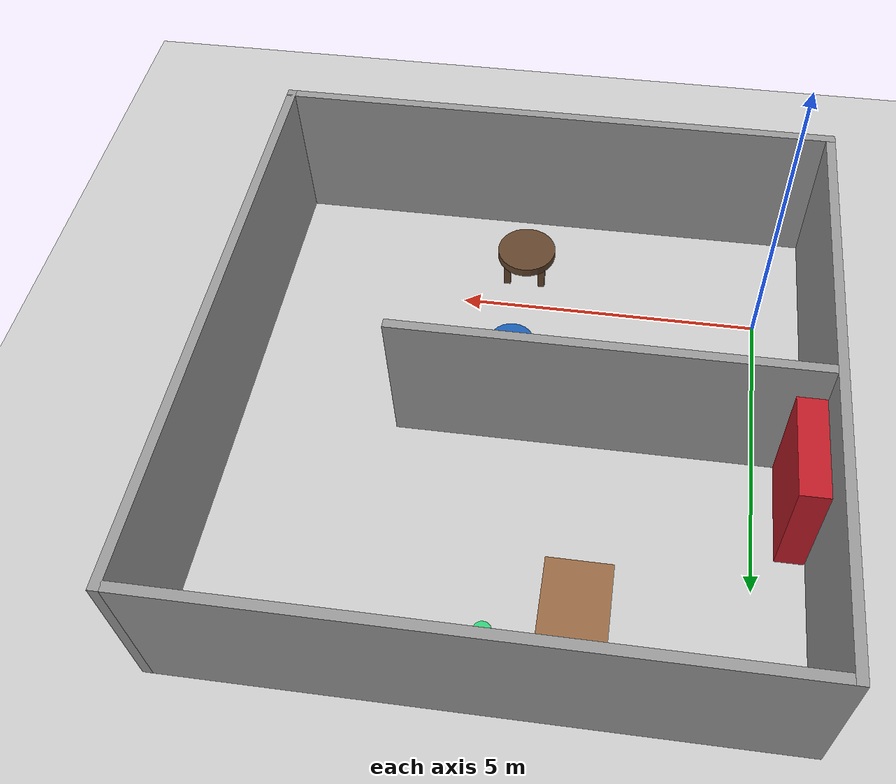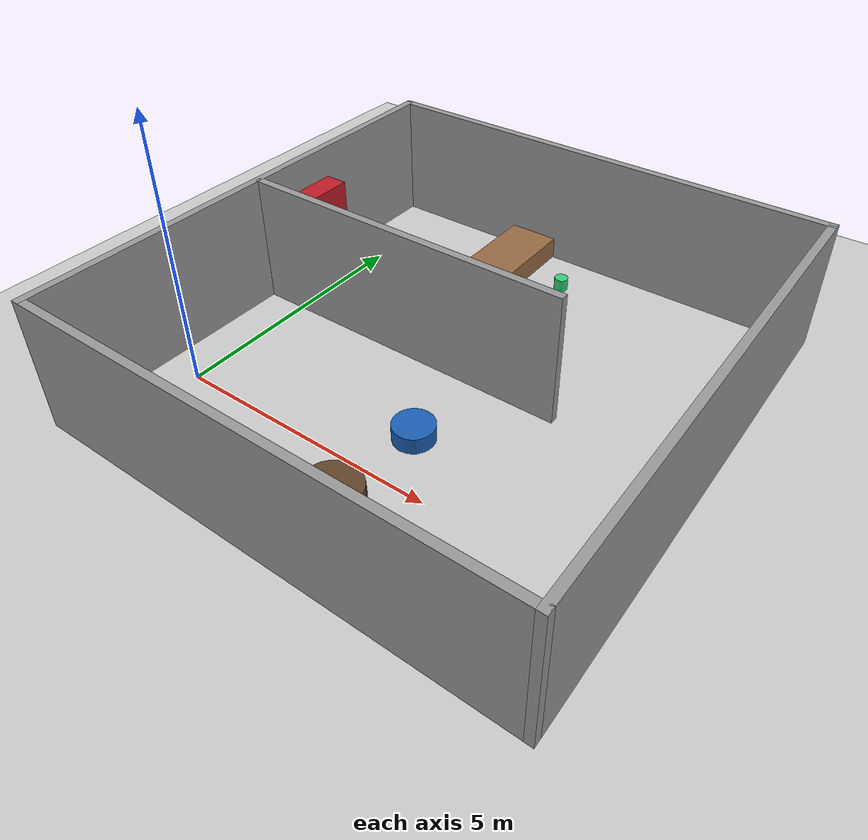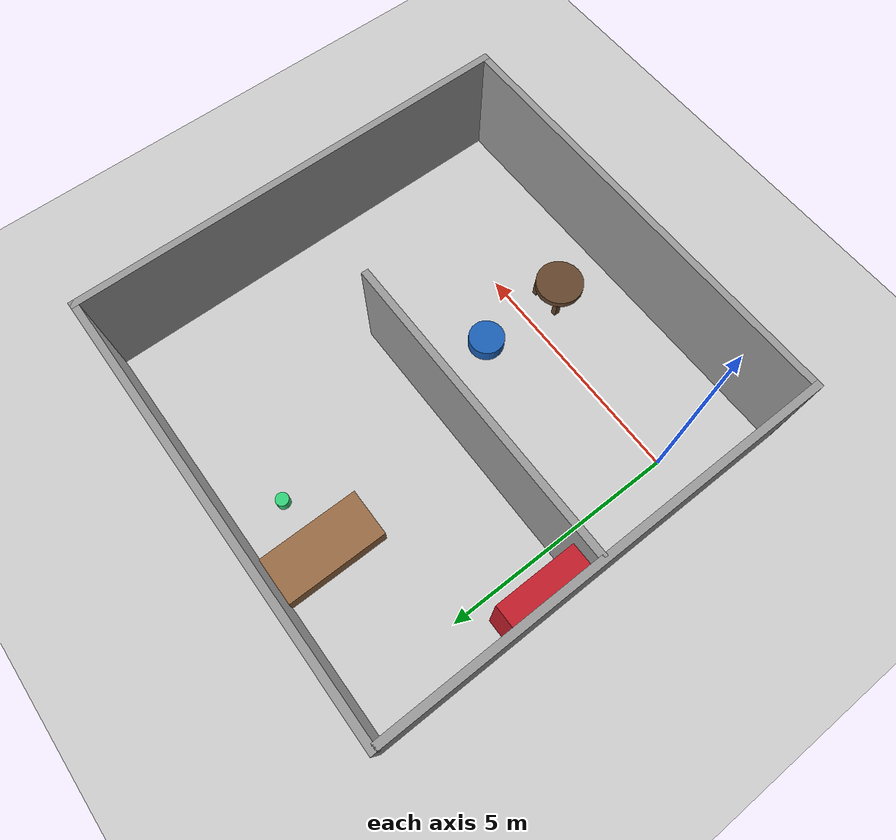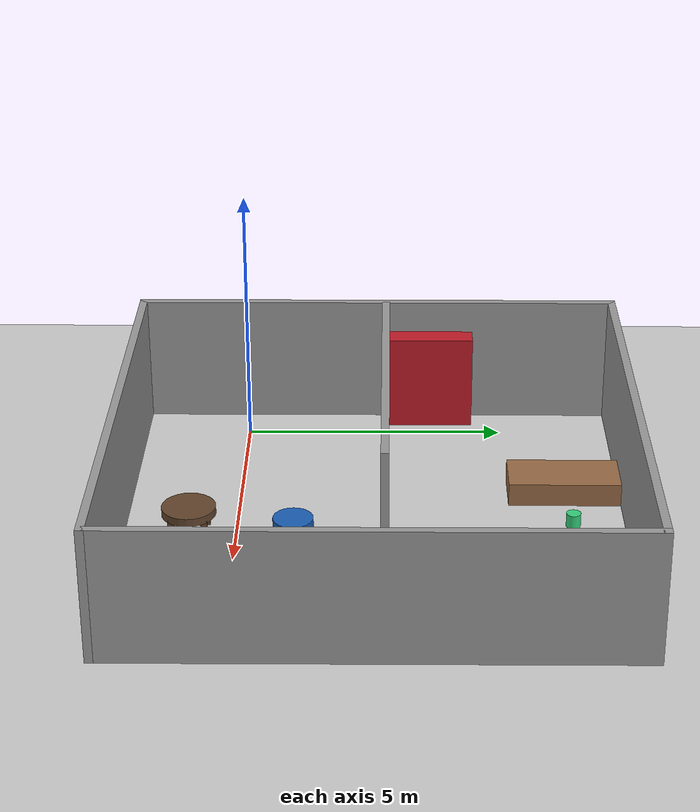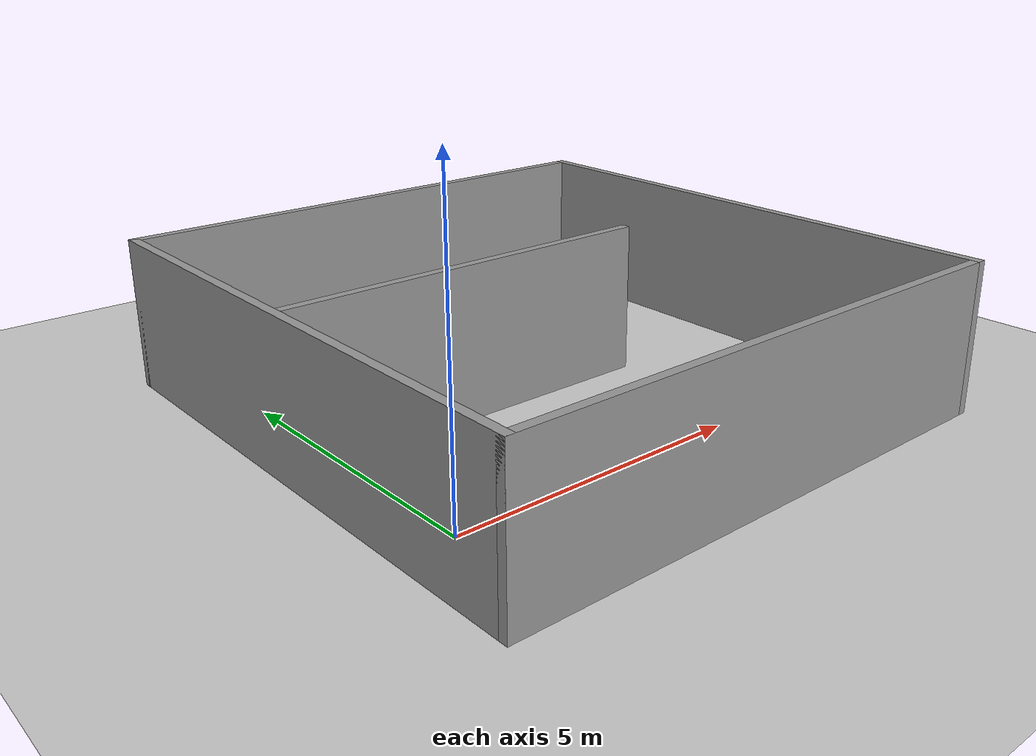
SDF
<sdf version="1.7">
 <world name="default">
  <light name="sun" type="directional">
   <pose>0 0 10 0 -0 0</pose>
   <diffuse>0.8 0.8 0.8 1</diffuse>
   <specular>0.2 0.2 0.2 1</specular>
   <attenuation>
    <range>1000</range>
    <constant>0.9</constant>
    <linear>0.01</linear>
    <quadratic>0.001</quadratic>
   </attenuation>
   <direction>-0.5 0.1 -0.9</direction>
   <spot><inner_angle>0</inner_angle><outer_angle>0</outer_angle><falloff>0</falloff></spot>
  </light>
  <model name="ground_plane">
   <static>1</static>
   <link name="link">
    <collision name="collision">
     <geometry><plane><normal>0 0 1</normal><size>100 100</size></plane></geometry>
     <surface><friction><ode><mu>100</mu><mu2>50</mu2></ode></friction></surface>
    </collision>
    <visual name="visual">
     <cast_shadows>0</cast_shadows>
     <geometry><plane><normal>0 0 1</normal><size>100 100</size></plane></geometry>
     <material>
      <script><uri>file://media/materials/scripts/gazebo.material</uri><name>Gazebo/Grey</name></script>
     </material>
    </visual>
   </link>
  </model>
  <gravity>0 0 -9.8</gravity>
  <magnetic_field>6e-06 2.3e-05 -4.2e-05</magnetic_field>
  <atmosphere type="adiabatic"/>
  <physics type="ode">
   <max_step_size>0.001</max_step_size>
   <real_time_factor>1</real_time_factor>
   <real_time_update_rate>1000</real_time_update_rate>
  </physics>
  <scene><ambient>0.4 0.4 0.4 1</ambient><background>0.7 0.7 0.7 1</background><shadows>1</shadows></scene>
  <audio><device>default</device></audio>
  <spherical_coordinates>
   <surface_model>EARTH_WGS84</surface_model>
   <latitude_deg>0</latitude_deg>
   <longitude_deg>0</longitude_deg>
   <elevation>0</elevation>
   <heading_deg>0</heading_deg>
  </spherical_coordinates>
  <model name="Untitled2">
   <pose>3.68841 2.55208 0 0 0 -1.57069</pose>
   <link name="Wall_0">
    <collision name="Wall_0_Collision">
     <geometry><box><size>9.5 0.15 2.5</size></box></geometry>
     <pose>0 0 1.25 0 -0 0</pose>
    </collision>
    <visual name="Wall_0_Visual">
     <pose>0 0 1.25 0 -0 0</pose>
     <geometry><box><size>9.5 0.15 2.5</size></box></geometry>
     <material>
      <script><uri>file://media/materials/scripts/gazebo.material</uri><name>Gazebo/Grey</name></script>
      <ambient>1 1 1 1</ambient>
     </material>
     <meta><layer>0</layer></meta>
    </visual>
    <pose>-0 -4.55 0 0 -0 0</pose>
   </link>
   <link name="Wall_12">
    <collision name="Wall_12_Collision">
     <geometry><box><size>6.5 0.15 2.5</size></box></geometry>
     <pose>0 0 1.25 0 -0 0</pose>
    </collision>
    <visual name="Wall_12_Visual">
     <pose>0 0 1.25 0 -0 0</pose>
     <geometry><box><size>6.5 0.15 2.5</size></box></geometry>
     <material>
      <script><uri>file://media/materials/scripts/gazebo.material</uri><name>Gazebo/Grey</name></script>
      <ambient>1 1 1 1</ambient>
     </material>
     <meta><layer>0</layer></meta>
    </visual>
    <pose>-0.172783 -1.29015 0 0 -0 1.5708</pose>
   </link>
   <link name="Wall_2">
    <collision name="Wall_2_Collision">
     <geometry><box><size>9.25 0.15 2.5</size></box></geometry>
     <pose>0 0 1.25 0 -0 0</pose>
    </collision>
    <visual name="Wall_2_Visual">
     <pose>0 0 1.25 0 -0 0</pose>
     <geometry><box><size>9.25 0.15 2.5</size></box></geometry>
     <material>
      <script><uri>file://media/materials/scripts/gazebo.material</uri><name>Gazebo/Grey</name></script>
      <ambient>1 1 1 1</ambient>
     </material>
     <meta><layer>0</layer></meta>
    </visual>
    <pose>4.675 0 0 0 -0 1.5708</pose>
   </link>
   <link name="Wall_3">
    <collision name="Wall_3_Collision">
     <geometry><box><size>9.5 0.15 2.5</size></box></geometry>
     <pose>0 0 1.25 0 -0 0</pose>
    </collision>
    <visual name="Wall_3_Visual">
     <pose>0 0 1.25 0 -0 0</pose>
     <geometry><box><size>9.5 0.15 2.5</size></box></geometry>
     <material>
      <script><uri>file://media/materials/scripts/gazebo.material</uri><name>Gazebo/Grey</name></script>
      <ambient>1 1 1 1</ambient>
     </material>
     <meta><layer>0</layer></meta>
    </visual>
    <pose>-0 4.55 0 0 -0 3.14159</pose>
   </link>
   <link name="Wall_4">
    <collision name="Wall_4_Collision">
     <geometry><box><size>9.25 0.15 2.5</size></box></geometry>
     <pose>0 0 1.25 0 -0 0</pose>
    </collision>
    <visual name="Wall_4_Visual">
     <pose>0 0 1.25 0 -0 0</pose>
     <geometry><box><size>9.25 0.15 2.5</size></box></geometry>
     <material>
      <script><uri>file://media/materials/scripts/gazebo.material</uri><name>Gazebo/Grey</name></script>
      <ambient>1 1 1 1</ambient>
     </material>
     <meta><layer>0</layer></meta>
    </visual>
    <pose>-4.675 0 0 0 -0 -1.5708</pose>
   </link>
   <static>1</static>
  </model>
  <model name="lan_canzhaowu1">
   <link name="link">
    <inertial>
     <mass>1</mass>
     <inertia><ixx>0.145833</ixx><ixy>0</ixy><ixz>0</ixz><iyy>0.145833</iyy><iyz>0</iyz><izz>0.125</izz></inertia>
    </inertial>
    <visual name="visual">
     <geometry><cylinder><radius>0.373748</radius><length>0.308137</length></cylinder></geometry>
     <material>
      <script><name>Gazebo/Grey</name><uri>file://media/materials/scripts/gazebo.material</uri></script>
      <shader type="pixel"><normal_map>__default__</normal_map></shader>
      <ambient>0.102 0.373 0.706 1</ambient>
      <diffuse>0.7 0.7 0.7 1</diffuse>
      <specular>0.01 0.01 0.01 1</specular>
      <emissive>0 0 0 1</emissive>
     </material>
    </visual>
    <collision name="collision">
     <geometry><cylinder><radius>0.373748</radius><length>0.308137</length></cylinder></geometry>
     <surface>
      <friction>
       <ode><mu>1</mu><mu2>1</mu2><fdir1>0 0 0</fdir1><slip1>0</slip1><slip2>0</slip2></ode>
       <torsional>
        <coefficient>1</coefficient>
        <patch_radius>0</patch_radius>
        <surface_radius>0</surface_radius>
        <use_patch_radius>1</use_patch_radius>
        <ode><slip>0</slip></ode>
       </torsional>
      </friction>
      <bounce><restitution_coefficient>0</restitution_coefficient><threshold>1e+06</threshold></bounce>
      <contact>
       <collide_without_contact>0</collide_without_contact>
       <collide_without_contact_bitmask>1</collide_without_contact_bitmask>
       <collide_bitmask>1</collide_bitmask>
       <ode>
        <soft_cfm>0</soft_cfm>
        <soft_erp>0.2</soft_erp>
        <kp>1e+13</kp>
        <kd>1</kd>
        <max_vel>0.01</max_vel>
        <min_depth>0</min_depth>
       </ode>
       <bullet>
        <split_impulse>1</split_impulse>
        <split_impulse_penetration_threshold>-0.01</split_impulse_penetration_threshold>
        <soft_cfm>0</soft_cfm>
        <soft_erp>0.2</soft_erp>
        <kp>1e+13</kp>
        <kd>1</kd>
       </bullet>
      </contact>
     </surface>
    </collision>
   </link>
   <static>0</static>
   <pose>4.02725 1.04197 0.154068 0 -0 0</pose>
  </model>
  <model name="zuozi4">
   <link name="link">
    <inertial>
     <mass>0.152216</mass>
     <inertia>
      <ixx>0.00980743</ixx>
      <ixy>0</ixy>
      <ixz>0</ixz>
      <iyy>0.00980743</iyy>
      <iyz>0</iyz>
      <izz>0.0190271</izz>
     </inertia>
    </inertial>
    <pose>0 0.025356 -0.074591 0 -0 0</pose>
    <visual name="visual">
     <geometry><cylinder><radius>0.5</radius><length>0.152217</length></cylinder></geometry>
     <material>
      <script><name>Gazebo/Grey</name><uri>file://media/materials/scripts/gazebo.material</uri></script>
      <shader type="pixel"><normal_map>__default__</normal_map></shader>
      <ambient>0.388 0.271 0.173 1</ambient>
      <diffuse>0.7 0.7 0.7 1</diffuse>
      <specular>0.01 0.01 0.01 1</specular>
      <emissive>0 0 0 1</emissive>
     </material>
    </visual>
    <collision name="collision">
     <geometry><cylinder><radius>0.5</radius><length>0.152217</length></cylinder></geometry>
     <surface>
      <friction>
       <ode><mu>1</mu><mu2>1</mu2><fdir1>0 0 0</fdir1><slip1>0</slip1><slip2>0</slip2></ode>
       <torsional>
        <coefficient>1</coefficient>
        <patch_radius>0</patch_radius>
        <surface_radius>0</surface_radius>
        <use_patch_radius>1</use_patch_radius>
        <ode><slip>0</slip></ode>
       </torsional>
      </friction>
      <bounce><restitution_coefficient>0</restitution_coefficient><threshold>1e+06</threshold></bounce>
      <contact>
       <collide_without_contact>0</collide_without_contact>
       <collide_without_contact_bitmask>1</collide_without_contact_bitmask>
       <collide_bitmask>1</collide_bitmask>
       <ode>
        <soft_cfm>0</soft_cfm>
        <soft_erp>0.2</soft_erp>
        <kp>1e+13</kp>
        <kd>1</kd>
        <max_vel>0.01</max_vel>
        <min_depth>0</min_depth>
       </ode>
       <bullet>
        <split_impulse>1</split_impulse>
        <split_impulse_penetration_threshold>-0.01</split_impulse_penetration_threshold>
        <soft_cfm>0</soft_cfm>
        <soft_erp>0.2</soft_erp>
        <kp>1e+13</kp>
        <kd>1</kd>
       </bullet>
      </contact>
     </surface>
    </collision>
   </link>
   <link name="link_1">
    <inertial>
     <mass>0.00581735</mass>
     <inertia>
      <ixx>9.222e-05</ixx>
      <ixy>0</ixy>
      <ixz>0</ixz>
      <iyy>9.12e-05</iyy>
      <iyz>0</iyz>
      <izz>1.353e-05</izz>
     </inertia>
    </inertial>
    <pose>-0.3 0.325356 -0.324591 0 -0 0</pose>
    <visual name="visual">
     <geometry><box><size>0.113572 0.122532 0.418601</size></box></geometry>
     <material>
      <lighting>1</lighting>
      <script><uri>file://media/materials/scripts/gazebo.material</uri><name>Gazebo/Grey</name></script>
      <shader type="pixel"><normal_map>__default__</normal_map></shader>
      <ambient>0.388 0.271 0.173 1</ambient>
      <diffuse>0.7 0.7 0.7 1</diffuse>
      <specular>0.01 0.01 0.01 1</specular>
      <emissive>0 0 0 1</emissive>
     </material>
    </visual>
    <collision name="collision">
     <geometry><box><size>0.113572 0.122532 0.418601</size></box></geometry>
     <surface>
      <friction>
       <ode><mu>1</mu><mu2>1</mu2><fdir1>0 0 0</fdir1><slip1>0</slip1><slip2>0</slip2></ode>
       <torsional>
        <coefficient>1</coefficient>
        <patch_radius>0</patch_radius>
        <surface_radius>0</surface_radius>
        <use_patch_radius>1</use_patch_radius>
        <ode><slip>0</slip></ode>
       </torsional>
      </friction>
      <bounce><restitution_coefficient>0</restitution_coefficient><threshold>1e+06</threshold></bounce>
      <contact>
       <collide_without_contact>0</collide_without_contact>
       <collide_without_contact_bitmask>1</collide_without_contact_bitmask>
       <collide_bitmask>1</collide_bitmask>
       <ode>
        <soft_cfm>0</soft_cfm>
        <soft_erp>0.2</soft_erp>
        <kp>1e+13</kp>
        <kd>1</kd>
        <max_vel>0.01</max_vel>
        <min_depth>0</min_depth>
       </ode>
       <bullet>
        <split_impulse>1</split_impulse>
        <split_impulse_penetration_threshold>-0.01</split_impulse_penetration_threshold>
        <soft_cfm>0</soft_cfm>
        <soft_erp>0.2</soft_erp>
        <kp>1e+13</kp>
        <kd>1</kd>
       </bullet>
      </contact>
     </surface>
    </collision>
   </link>
   <link name="link_1_clone">
    <inertial>
     <mass>0.00581735</mass>
     <inertia>
      <ixx>9.222e-05</ixx>
      <ixy>0</ixy>
      <ixz>0</ixz>
      <iyy>9.12e-05</iyy>
      <iyz>0</iyz>
      <izz>1.353e-05</izz>
     </inertia>
    </inertial>
    <pose>0.3 0.325356 -0.324591 0 -0 0</pose>
    <visual name="visual">
     <geometry><box><size>0.113572 0.122532 0.418601</size></box></geometry>
     <material>
      <lighting>1</lighting>
      <script><uri>file://media/materials/scripts/gazebo.material</uri><name>Gazebo/Grey</name></script>
      <shader type="pixel"><normal_map>__default__</normal_map></shader>
      <ambient>0.388 0.271 0.173 1</ambient>
      <diffuse>0.7 0.7 0.7 1</diffuse>
      <specular>0.01 0.01 0.01 1</specular>
      <emissive>0 0 0 1</emissive>
     </material>
    </visual>
    <collision name="collision">
     <geometry><box><size>0.113572 0.122532 0.418601</size></box></geometry>
     <surface>
      <friction>
       <ode><mu>1</mu><mu2>1</mu2><fdir1>0 0 0</fdir1><slip1>0</slip1><slip2>0</slip2></ode>
       <torsional>
        <coefficient>1</coefficient>
        <patch_radius>0</patch_radius>
        <surface_radius>0</surface_radius>
        <use_patch_radius>1</use_patch_radius>
        <ode><slip>0</slip></ode>
       </torsional>
      </friction>
      <bounce><restitution_coefficient>0</restitution_coefficient><threshold>1e+06</threshold></bounce>
      <contact>
       <collide_without_contact>0</collide_without_contact>
       <collide_without_contact_bitmask>1</collide_without_contact_bitmask>
       <collide_bitmask>1</collide_bitmask>
       <ode>
        <soft_cfm>0</soft_cfm>
        <soft_erp>0.2</soft_erp>
        <kp>1e+13</kp>
        <kd>1</kd>
        <max_vel>0.01</max_vel>
        <min_depth>0</min_depth>
       </ode>
       <bullet>
        <split_impulse>1</split_impulse>
        <split_impulse_penetration_threshold>-0.01</split_impulse_penetration_threshold>
        <soft_cfm>0</soft_cfm>
        <soft_erp>0.2</soft_erp>
        <kp>1e+13</kp>
        <kd>1</kd>
       </bullet>
      </contact>
     </surface>
    </collision>
   </link>
   <link name="link_1_clone_0">
    <inertial>
     <mass>0.00581735</mass>
     <inertia>
      <ixx>9.222e-05</ixx>
      <ixy>0</ixy>
      <ixz>0</ixz>
      <iyy>9.12e-05</iyy>
      <iyz>0</iyz>
      <izz>1.353e-05</izz>
     </inertia>
    </inertial>
    <pose>0.3 -0.274644 -0.324591 0 -0 0</pose>
    <visual name="visual">
     <geometry><box><size>0.113572 0.122532 0.418601</size></box></geometry>
     <material>
      <lighting>1</lighting>
      <script><uri>file://media/materials/scripts/gazebo.material</uri><name>Gazebo/Grey</name></script>
      <shader type="pixel"><normal_map>__default__</normal_map></shader>
      <ambient>0.388 0.271 0.173 1</ambient>
      <diffuse>0.7 0.7 0.7 1</diffuse>
      <specular>0.01 0.01 0.01 1</specular>
      <emissive>0 0 0 1</emissive>
     </material>
    </visual>
    <collision name="collision">
     <geometry><box><size>0.113572 0.122532 0.418601</size></box></geometry>
     <surface>
      <friction>
       <ode><mu>1</mu><mu2>1</mu2><fdir1>0 0 0</fdir1><slip1>0</slip1><slip2>0</slip2></ode>
       <torsional>
        <coefficient>1</coefficient>
        <patch_radius>0</patch_radius>
        <surface_radius>0</surface_radius>
        <use_patch_radius>1</use_patch_radius>
        <ode><slip>0</slip></ode>
       </torsional>
      </friction>
      <bounce><restitution_coefficient>0</restitution_coefficient><threshold>1e+06</threshold></bounce>
      <contact>
       <collide_without_contact>0</collide_without_contact>
       <collide_without_contact_bitmask>1</collide_without_contact_bitmask>
       <collide_bitmask>1</collide_bitmask>
       <ode>
        <soft_cfm>0</soft_cfm>
        <soft_erp>0.2</soft_erp>
        <kp>1e+13</kp>
        <kd>1</kd>
        <max_vel>0.01</max_vel>
        <min_depth>0</min_depth>
       </ode>
       <bullet>
        <split_impulse>1</split_impulse>
        <split_impulse_penetration_threshold>-0.01</split_impulse_penetration_threshold>
        <soft_cfm>0</soft_cfm>
        <soft_erp>0.2</soft_erp>
        <kp>1e+13</kp>
        <kd>1</kd>
       </bullet>
      </contact>
     </surface>
    </collision>
   </link>
   <link name="link_1_clone_1">
    <inertial>
     <mass>0.00581735</mass>
     <inertia>
      <ixx>9.222e-05</ixx>
      <ixy>0</ixy>
      <ixz>0</ixz>
      <iyy>9.12e-05</iyy>
      <iyz>0</iyz>
      <izz>1.353e-05</izz>
     </inertia>
    </inertial>
    <pose>-0.3 -0.274644 -0.324591 0 -0 0</pose>
    <visual name="visual">
     <geometry><box><size>0.113572 0.122532 0.418601</size></box></geometry>
     <material>
      <lighting>1</lighting>
      <script><uri>file://media/materials/scripts/gazebo.material</uri><name>Gazebo/Grey</name></script>
      <shader type="pixel"><normal_map>__default__</normal_map></shader>
      <ambient>0.388 0.271 0.173 1</ambient>
      <diffuse>0.7 0.7 0.7 1</diffuse>
      <specular>0.01 0.01 0.01 1</specular>
      <emissive>0 0 0 1</emissive>
     </material>
    </visual>
    <collision name="collision">
     <geometry><box><size>0.113572 0.122532 0.418601</size></box></geometry>
     <surface>
      <friction>
       <ode><mu>1</mu><mu2>1</mu2><fdir1>0 0 0</fdir1><slip1>0</slip1><slip2>0</slip2></ode>
       <torsional>
        <coefficient>1</coefficient>
        <patch_radius>0</patch_radius>
        <surface_radius>0</surface_radius>
        <use_patch_radius>1</use_patch_radius>
        <ode><slip>0</slip></ode>
       </torsional>
      </friction>
      <bounce><restitution_coefficient>0</restitution_coefficient><threshold>1e+06</threshold></bounce>
      <contact>
       <collide_without_contact>0</collide_without_contact>
       <collide_without_contact_bitmask>1</collide_without_contact_bitmask>
       <collide_bitmask>1</collide_bitmask>
       <ode>
        <soft_cfm>0</soft_cfm>
        <soft_erp>0.2</soft_erp>
        <kp>1e+13</kp>
        <kd>1</kd>
        <max_vel>0.01</max_vel>
        <min_depth>0</min_depth>
       </ode>
       <bullet>
        <split_impulse>1</split_impulse>
        <split_impulse_penetration_threshold>-0.01</split_impulse_penetration_threshold>
        <soft_cfm>0</soft_cfm>
        <soft_erp>0.2</soft_erp>
        <kp>1e+13</kp>
        <kd>1</kd>
       </bullet>
      </contact>
     </surface>
    </collision>
   </link>
   <joint name="link_JOINT_0" type="revolute">
    <parent>link</parent>
    <child>link_1</child>
    <axis>
     <xyz>1 0 0</xyz>
     <limit>
      <lower>-1.79769e+308</lower>
      <upper>1.79769e+308</upper>
      <effort>-1</effort>
      <velocity>-1</velocity>
     </limit>
     <dynamics>
      <spring_reference>0</spring_reference>
      <spring_stiffness>0</spring_stiffness>
      <damping>0</damping>
     </dynamics>
    </axis>
    <physics>
     <ode><limit><cfm>0</cfm><erp>0.2</erp></limit><suspension><cfm>0</cfm><erp>0.2</erp></suspension></ode>
    </physics>
   </joint>
   <joint name="link_JOINT_1" type="revolute">
    <parent>link</parent>
    <child>link_1_clone</child>
    <axis>
     <xyz>1 0 0</xyz>
     <limit>
      <lower>-1.79769e+308</lower>
      <upper>1.79769e+308</upper>
      <effort>-1</effort>
      <velocity>-1</velocity>
     </limit>
     <dynamics>
      <spring_reference>0</spring_reference>
      <spring_stiffness>0</spring_stiffness>
      <damping>0</damping>
     </dynamics>
    </axis>
    <physics>
     <ode><limit><cfm>0</cfm><erp>0.2</erp></limit><suspension><cfm>0</cfm><erp>0.2</erp></suspension></ode>
    </physics>
   </joint>
   <joint name="link_JOINT_2" type="revolute">
    <parent>link</parent>
    <child>link_1_clone_0</child>
    <axis>
     <xyz>1 0 0</xyz>
     <limit>
      <lower>-1.79769e+308</lower>
      <upper>1.79769e+308</upper>
      <effort>-1</effort>
      <velocity>-1</velocity>
     </limit>
     <dynamics>
      <spring_reference>0</spring_reference>
      <spring_stiffness>0</spring_stiffness>
      <damping>0</damping>
     </dynamics>
    </axis>
    <physics>
     <ode><limit><cfm>0</cfm><erp>0.2</erp></limit><suspension><cfm>0</cfm><erp>0.2</erp></suspension></ode>
    </physics>
   </joint>
   <joint name="link_JOINT_3" type="revolute">
    <parent>link</parent>
    <child>link_1_clone_1</child>
    <axis>
     <xyz>1 0 0</xyz>
     <limit>
      <lower>-1.79769e+308</lower>
      <upper>1.79769e+308</upper>
      <effort>-1</effort>
      <velocity>-1</velocity>
     </limit>
     <dynamics>
      <spring_reference>0</spring_reference>
      <spring_stiffness>0</spring_stiffness>
      <damping>0</damping>
     </dynamics>
    </axis>
    <physics>
     <ode><limit><cfm>0</cfm><erp>0.2</erp></limit><suspension><cfm>0</cfm><erp>0.2</erp></suspension></ode>
    </physics>
   </joint>
   <static>0</static>
   <pose>4.01248 -0.885254 0.533892 0 -0 0.00148</pose>
  </model>
  <model name="shuchu">
   <link name="link">
    <inertial>
     <mass>1</mass>
     <inertia>
      <ixx>0.166667</ixx>
      <ixy>0</ixy>
      <ixz>0</ixz>
      <iyy>0.166667</iyy>
      <iyz>0</iyz>
      <izz>0.166667</izz>
     </inertia>
    </inertial>
    <visual name="visual">
     <geometry><box><size>0.446695 1.65344 1.87811</size></box></geometry>
     <material>
      <script><name>Gazebo/Grey</name><uri>file://media/materials/scripts/gazebo.material</uri></script>
      <shader type="pixel"><normal_map>__default__</normal_map></shader>
      <ambient>0.753 0.11 0.157 1</ambient>
      <diffuse>0.7 0.7 0.7 1</diffuse>
      <specular>0.01 0.01 0.01 1</specular>
      <emissive>0 0 0 1</emissive>
     </material>
    </visual>
    <collision name="collision">
     <geometry><box><size>0.446695 1.65344 1.87811</size></box></geometry>
     <surface>
      <friction>
       <ode><mu>1</mu><mu2>1</mu2><fdir1>0 0 0</fdir1><slip1>0</slip1><slip2>0</slip2></ode>
       <torsional>
        <coefficient>1</coefficient>
        <patch_radius>0</patch_radius>
        <surface_radius>0</surface_radius>
        <use_patch_radius>1</use_patch_radius>
        <ode><slip>0</slip></ode>
       </torsional>
      </friction>
      <bounce><restitution_coefficient>0</restitution_coefficient><threshold>1e+06</threshold></bounce>
      <contact>
       <collide_without_contact>0</collide_without_contact>
       <collide_without_contact_bitmask>1</collide_without_contact_bitmask>
       <collide_bitmask>1</collide_bitmask>
       <ode>
        <soft_cfm>0</soft_cfm>
        <soft_erp>0.2</soft_erp>
        <kp>1e+13</kp>
        <kd>1</kd>
        <max_vel>0.01</max_vel>
        <min_depth>0</min_depth>
       </ode>
       <bullet>
        <split_impulse>1</split_impulse>
        <split_impulse_penetration_threshold>-0.01</split_impulse_penetration_threshold>
        <soft_cfm>0</soft_cfm>
        <soft_erp>0.2</soft_erp>
        <kp>1e+13</kp>
        <kd>1</kd>
       </bullet>
      </contact>
     </surface>
    </collision>
   </link>
   <static>0</static>
   <pose>-0.554793 3.6262 0.93905 0 -0 0.000224</pose>
  </model>
  <model name="zong_chuang">
   <link name="link">
    <inertial>
     <mass>1</mass>
     <inertia>
      <ixx>0.166667</ixx>
      <ixy>0</ixy>
      <ixz>0</ixz>
      <iyy>0.166667</iyy>
      <iyz>0</iyz>
      <izz>0.166667</izz>
     </inertia>
    </inertial>
    <visual name="visual">
     <geometry><box><size>1 2.10711 0.441286</size></box></geometry>
     <material>
      <script><name>Gazebo/Grey</name><uri>file://media/materials/scripts/gazebo.material</uri></script>
      <shader type="pixel"><normal_map>__default__</normal_map></shader>
      <ambient>0.596 0.416 0.267 1</ambient>
      <diffuse>0.7 0.7 0.7 1</diffuse>
      <specular>0.01 0.01 0.01 1</specular>
      <emissive>0 0 0 1</emissive>
     </material>
    </visual>
    <collision name="collision">
     <geometry><box><size>1 2.10711 0.441286</size></box></geometry>
     <surface>
      <friction>
       <ode><mu>1</mu><mu2>1</mu2><fdir1>0 0 0</fdir1><slip1>0</slip1><slip2>0</slip2></ode>
       <torsional>
        <coefficient>1</coefficient>
        <patch_radius>0</patch_radius>
        <surface_radius>0</surface_radius>
        <use_patch_radius>1</use_patch_radius>
        <ode><slip>0</slip></ode>
       </torsional>
      </friction>
      <bounce><restitution_coefficient>0</restitution_coefficient><threshold>1e+06</threshold></bounce>
      <contact>
       <collide_without_contact>0</collide_without_contact>
       <collide_without_contact_bitmask>1</collide_without_contact_bitmask>
       <collide_bitmask>1</collide_bitmask>
       <ode>
        <soft_cfm>0</soft_cfm>
        <soft_erp>0.2</soft_erp>
        <kp>1e+13</kp>
        <kd>1</kd>
        <max_vel>0.01</max_vel>
        <min_depth>0</min_depth>
       </ode>
       <bullet>
        <split_impulse>1</split_impulse>
        <split_impulse_penetration_threshold>-0.01</split_impulse_penetration_threshold>
        <soft_cfm>0</soft_cfm>
        <soft_erp>0.2</soft_erp>
        <kp>1e+13</kp>
        <kd>1</kd>
       </bullet>
      </contact>
     </surface>
    </collision>
   </link>
   <static>0</static>
   <pose>2.49559 6.09726 0.220643 -0 -0 -0.002067</pose>
  </model>
  <model name="lv_lajitong">
   <link name="link">
    <inertial>
     <mass>1</mass>
     <inertia><ixx>0.145833</ixx><ixy>0</ixy><ixz>0</ixz><iyy>0.145833</iyy><iyz>0</iyz><izz>0.125</izz></inertia>
    </inertial>
    <visual name="visual">
     <geometry><cylinder><radius>0.135318</radius><length>0.262142</length></cylinder></geometry>
     <material>
      <script><name>Gazebo/Grey</name><uri>file://media/materials/scripts/gazebo.material</uri></script>
      <shader type="pixel"><normal_map>__default__</normal_map></shader>
      <ambient>0.2 0.82 0.478 1</ambient>
      <diffuse>0.7 0.7 0.7 1</diffuse>
      <specular>0.01 0.01 0.01 1</specular>
      <emissive>0 0 0 1</emissive>
     </material>
    </visual>
    <collision name="collision">
     <geometry><cylinder><radius>0.135318</radius><length>0.262142</length></cylinder></geometry>
     <surface>
      <friction>
       <ode><mu>1</mu><mu2>1</mu2><fdir1>0 0 0</fdir1><slip1>0</slip1><slip2>0</slip2></ode>
       <torsional>
        <coefficient>1</coefficient>
        <patch_radius>0</patch_radius>
        <surface_radius>0</surface_radius>
        <use_patch_radius>1</use_patch_radius>
        <ode><slip>0</slip></ode>
       </torsional>
      </friction>
      <bounce><restitution_coefficient>0</restitution_coefficient><threshold>1e+06</threshold></bounce>
      <contact>
       <collide_without_contact>0</collide_without_contact>
       <collide_without_contact_bitmask>1</collide_without_contact_bitmask>
       <collide_bitmask>1</collide_bitmask>
       <ode>
        <soft_cfm>0</soft_cfm>
        <soft_erp>0.2</soft_erp>
        <kp>1e+13</kp>
        <kd>1</kd>
        <max_vel>0.01</max_vel>
        <min_depth>0</min_depth>
       </ode>
       <bullet>
        <split_impulse>1</split_impulse>
        <split_impulse_penetration_threshold>-0.01</split_impulse_penetration_threshold>
        <soft_cfm>0</soft_cfm>
        <soft_erp>0.2</soft_erp>
        <kp>1e+13</kp>
        <kd>1</kd>
       </bullet>
      </contact>
     </surface>
    </collision>
   </link>
   <static>0</static>
   <pose>3.73936 6.19802 0.131062 0 -0 0</pose>
  </model>
 </world>
</sdf>
